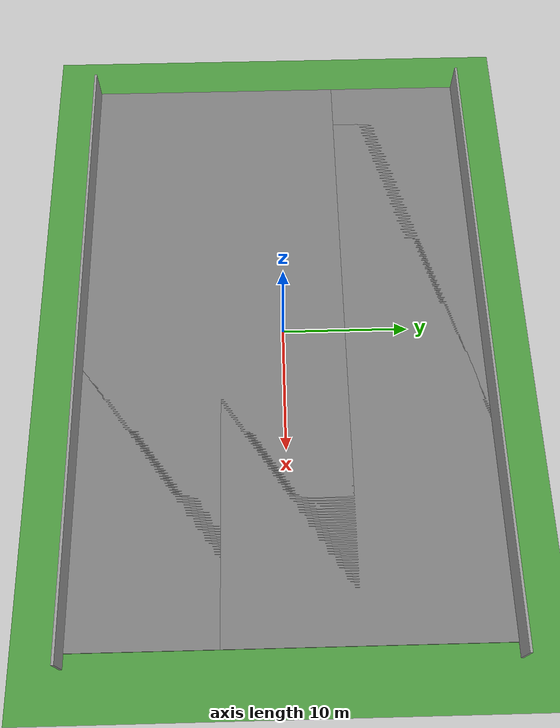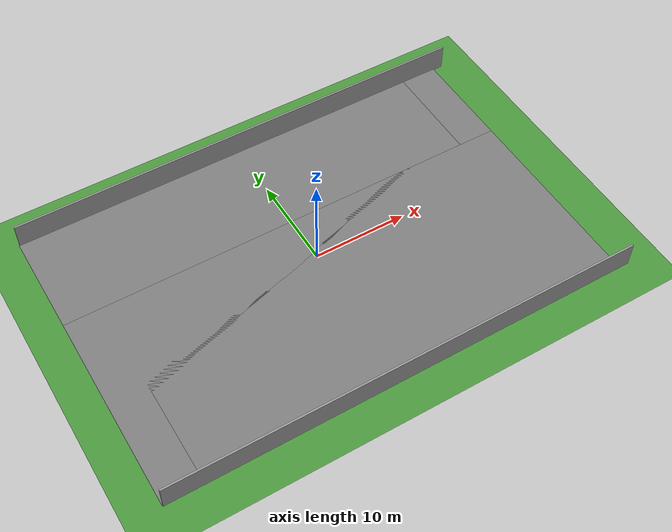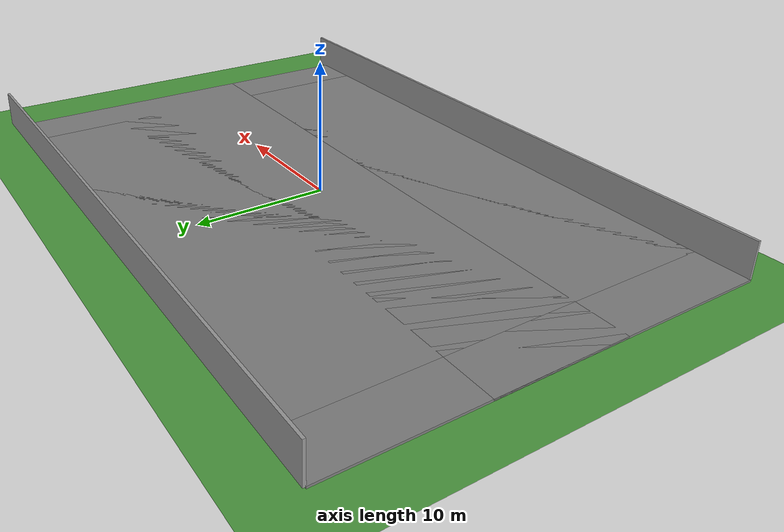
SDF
<sdf version="1.4">
 <world name="default">
  <scene><sky><clouds><speed>12</speed></clouds></sky></scene>
  <include><uri>model://custom_ground</uri></include>
  <include><uri>model://sun</uri></include>
  <include><uri>model://orchard_ground</uri></include>
  <include><uri>model://orchard_wall</uri><name>wall1</name><pose>0.56 16.05 0 0 0 0</pose></include>
  <include><uri>model://orchard_wall</uri><name>wall2</name><pose>0.56 -16.05 0 0 0 0</pose></include>
 </world>
</sdf>

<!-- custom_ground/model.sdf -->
<sdf version="1.4">
<model name="custom_ground">
  <static>true</static>
    <link name="link">
      <collision name="collision">
        <geometry>
          <plane>
            <normal>0 0 1</normal>
            <size>100 100</size>
          </plane>
        </geometry>
        <surface>
          <friction>
            <ode>
              <mu>100</mu>
              <mu2>50</mu2>
            </ode>
          </friction>
        </surface>
      </collision>
      <visual name="visual">
        <cast_shadows>false</cast_shadows>
        <geometry>
          <plane>
            <normal>0 0 1</normal>
            <size>100 100</size>
          </plane>
        </geometry>
        <material>
          <script>
            <uri>model://custom_ground/materials/scripts</uri>
            <uri>model://custom_ground/materials/textures/</uri>
            <name>CustomGround/GrassDiffuseSpecular</name>
          </script>
        </material>
      </visual>
    </link>
  </model>
</sdf>

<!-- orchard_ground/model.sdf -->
<sdf version='1.6'>
  <model name='orchard_ground'>
    <link name='link'>
      <self_collide>0</self_collide>
      <enable_wind>0</enable_wind>
      <kinematic>0</kinematic>
      <pose frame=''>0 0 0 0 -0 0</pose>
      <gravity>1</gravity>
      <inertial>
        <mass>1</mass>
        <pose frame=''>0 0 0 0 -0 0</pose>
        <inertia>
          <ixx>1</ixx>
          <ixy>0</ixy>
          <ixz>0</ixz>
          <iyy>1</iyy>
          <iyz>0</iyz>
          <izz>1</izz>
        </inertia>
      </inertial>
      <visual name='visual_1'>
        <pose frame=''>-2 5.5 0 0 -0 0</pose>
        <cast_shadows>0</cast_shadows>
        <geometry>
          <box>
            <size>45 21 0.2</size>
          </box>
        </geometry>
        <material>
          <script>
            <uri>model://mud_box/materials/scripts</uri>
            <uri>model://mud_box/materials/textures</uri>
            <name>vrc/mud</name>
          </script>
          <shader type='pixel'>
            <normal_map>__default__</normal_map>
          </shader>
          <ambient>0.5 0.5 0.5 1</ambient>
          <diffuse>0.5 0.5 0.5 1</diffuse>
          <specular>0.2 0.2 0.2 1</specular>
          <emissive>0 0 0 1</emissive>
        </material>
        <transparency>0</transparency>
      </visual>
      <visual name='visual_3'>
        <pose frame=''>2 -5.5 0 0 -0 0</pose>
        <cast_shadows>0</cast_shadows>
        <geometry>
          <box>
            <size>45 21 0.2</size>
          </box>
        </geometry>
        <material>
          <script>
            <uri>model://mud_box/materials/scripts</uri>
            <uri>model://mud_box/materials/textures</uri>
            <name>vrc/mud</name>
          </script>
          <shader type='pixel'>
            <normal_map>__default__</normal_map>
          </shader>
          <ambient>0.5 0.5 0.5 1</ambient>
          <diffuse>0.5 0.5 0.5 1</diffuse>
          <specular>0.2 0.2 0.2 1</specular>
          <emissive>0 0 0 1</emissive>
        </material>
        <transparency>0</transparency>
      </visual>
      <visual name='visual_2'>
        <pose frame=''>2 5.5 0 0 -0 0</pose>
        <cast_shadows>0</cast_shadows>
        <geometry>
          <box>
            <size>45 21 0.2</size>
          </box>
        </geometry>
        <material>
          <script>
            <uri>model://mud_box/materials/scripts</uri>
            <uri>model://mud_box/materials/textures</uri>
            <name>vrc/mud</name>
          </script>
          <shader type='pixel'>
            <normal_map>__default__</normal_map>
          </shader>
          <ambient>0.5 0.5 0.5 1</ambient>
          <diffuse>0.5 0.5 0.5 1</diffuse>
          <specular>0.2 0.2 0.2 1</specular>
          <emissive>0 0 0 1</emissive>
        </material>
        <transparency>0</transparency>
      </visual>
      <visual name='visual_4'>
        <pose frame=''>-2 -5.5 0 0 -0 0</pose>
        <cast_shadows>0</cast_shadows>
        <geometry>
          <box>
            <size>45 21 0.2</size>
          </box>
        </geometry>
        <material>
          <script>
            <uri>model://mud_box/materials/scripts</uri>
            <uri>model://mud_box/materials/textures</uri>
            <name>vrc/mud</name>
          </script>
          <shader type='pixel'>
            <normal_map>__default__</normal_map>
          </shader>
          <ambient>0.5 0.5 0.5 1</ambient>
          <diffuse>0.5 0.5 0.5 1</diffuse>
          <specular>0.2 0.2 0.2 1</specular>
          <emissive>0 0 0 1</emissive>
        </material>
        <transparency>0</transparency>
      </visual>
      <collision name='collision'>
        <laser_retro>0</laser_retro>
        <max_contacts>10</max_contacts>
        <pose frame=''>0 0.2 0 0 -0 0</pose>
        <geometry>
          <box>
            <size>49 32 0.2</size>
          </box>
        </geometry>
        <surface>
          <friction>
            <ode>
              <mu>1</mu>
              <mu2>1</mu2>
              <fdir1>0 0 0</fdir1>
              <slip1>0</slip1>
              <slip2>0</slip2>
            </ode>
            <torsional>
              <coefficient>1</coefficient>
              <patch_radius>0</patch_radius>
              <surface_radius>0</surface_radius>
              <use_patch_radius>1</use_patch_radius>
              <ode>
                <slip>0</slip>
              </ode>
            </torsional>
          </friction>
          <bounce>
            <restitution_coefficient>0</restitution_coefficient>
            <threshold>1e+06</threshold>
          </bounce>
          <contact>
            <collide_without_contact>0</collide_without_contact>
            <collide_without_contact_bitmask>1</collide_without_contact_bitmask>
            <collide_bitmask>1</collide_bitmask>
            <ode>
              <soft_cfm>0</soft_cfm>
              <soft_erp>0.2</soft_erp>
              <kp>1e+13</kp>
              <kd>1</kd>
              <max_vel>0.01</max_vel>
              <min_depth>0</min_depth>
            </ode>
            <bullet>
              <split_impulse>1</split_impulse>
              <split_impulse_penetration_threshold>-0.01</split_impulse_penetration_threshold>
              <soft_cfm>0</soft_cfm>
              <soft_erp>0.2</soft_erp>
              <kp>1e+13</kp>
              <kd>1</kd>
            </bullet>
          </contact>
        </surface>
      </collision>
    </link>
    <static>1</static>
    <allow_auto_disable>1</allow_auto_disable>
  </model>
</sdf>

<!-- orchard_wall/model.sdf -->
<sdf version='1.6'>
  <model name='orchard_wall'>
    <link name='link'>
      <pose frame=''>0 0 1.4 0 -0 0</pose>
      <self_collide>0</self_collide>
      <enable_wind>0</enable_wind>
      <kinematic>0</kinematic>
      <gravity>1</gravity>
      <inertial>
        <mass>1</mass>
        <pose frame=''>0 0 0 0 -0 0</pose>
        <inertia>
          <ixx>1</ixx>
          <ixy>0</ixy>
          <ixz>0</ixz>
          <iyy>1</iyy>
          <iyz>0</iyz>
          <izz>1</izz>
        </inertia>
      </inertial>
      <visual name='visual'>
        <cast_shadows>0</cast_shadows>
        <geometry>
          <box>
            <size>50 0.2 2.8</size>
          </box>
        </geometry>
        <material>
          <script>
            <uri>model://grey_wall/materials/scripts</uri>
            <uri>model://grey_wall/materials/textures</uri>
            <name>vrc/grey_wall</name>
          </script>
          <shader type='pixel'>
            <normal_map>__default__</normal_map>
          </shader>
          <ambient>1 1 1 1</ambient>
          <diffuse>1 1 1 1</diffuse>
          <specular>0 0 0 1</specular>
          <emissive>0 0 0 1</emissive>
        </material>
        <pose frame=''>0 0 0 0 -0 0</pose>
        <transparency>0</transparency>
      </visual>
      <collision name='collision'>
        <laser_retro>0</laser_retro>
        <max_contacts>10</max_contacts>
        <pose frame=''>0 0 0 0 -0 0</pose>
        <geometry>
          <box>
            <size>50 0.2 2.8</size>
          </box>
        </geometry>
        <surface>
          <friction>
            <ode>
              <mu>1</mu>
              <mu2>1</mu2>
              <fdir1>0 0 0</fdir1>
              <slip1>0</slip1>
              <slip2>0</slip2>
            </ode>
            <torsional>
              <coefficient>1</coefficient>
              <patch_radius>0</patch_radius>
              <surface_radius>0</surface_radius>
              <use_patch_radius>1</use_patch_radius>
              <ode>
                <slip>0</slip>
              </ode>
            </torsional>
          </friction>
          <bounce>
            <restitution_coefficient>0</restitution_coefficient>
            <threshold>1e+06</threshold>
          </bounce>
          <contact>
            <collide_without_contact>0</collide_without_contact>
            <collide_without_contact_bitmask>1</collide_without_contact_bitmask>
            <collide_bitmask>1</collide_bitmask>
            <ode>
              <soft_cfm>0</soft_cfm>
              <soft_erp>0.2</soft_erp>
              <kp>1e+13</kp>
              <kd>1</kd>
              <max_vel>0.01</max_vel>
              <min_depth>0</min_depth>
            </ode>
            <bullet>
              <split_impulse>1</split_impulse>
              <split_impulse_penetration_threshold>-0.01</split_impulse_penetration_threshold>
              <soft_cfm>0</soft_cfm>
              <soft_erp>0.2</soft_erp>
              <kp>1e+13</kp>
              <kd>1</kd>
            </bullet>
          </contact>
        </surface>
      </collision>
    </link>
    <static>1</static>
    <allow_auto_disable>1</allow_auto_disable>
  </model>
</sdf>
